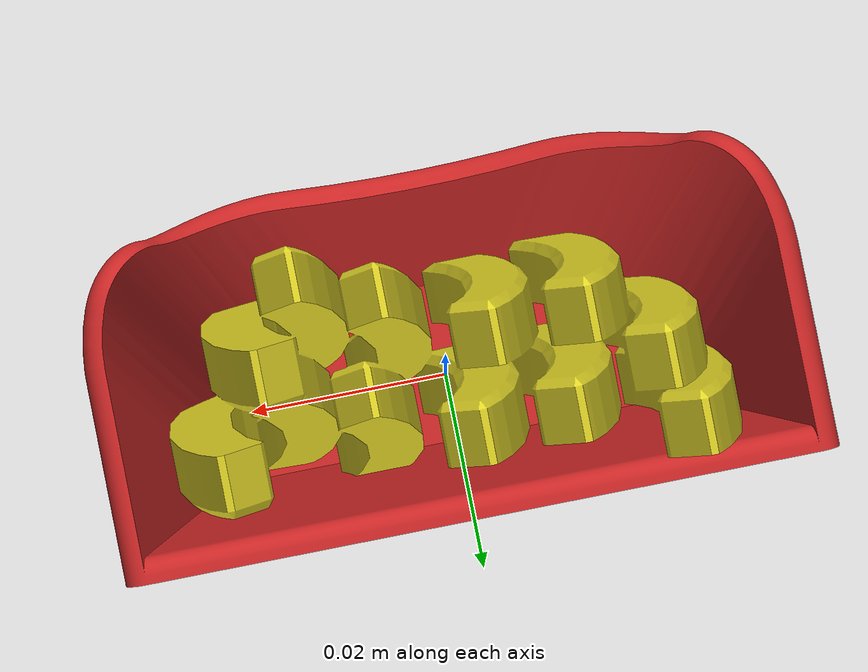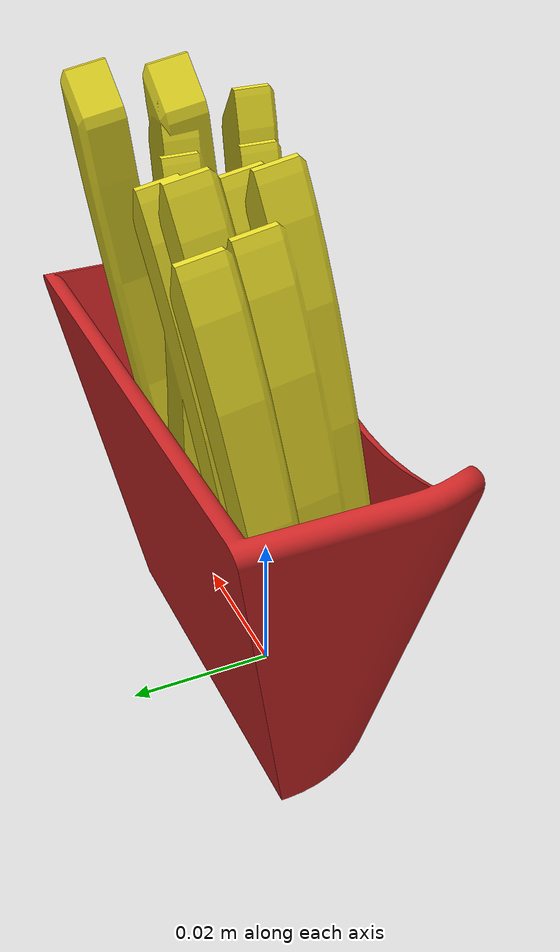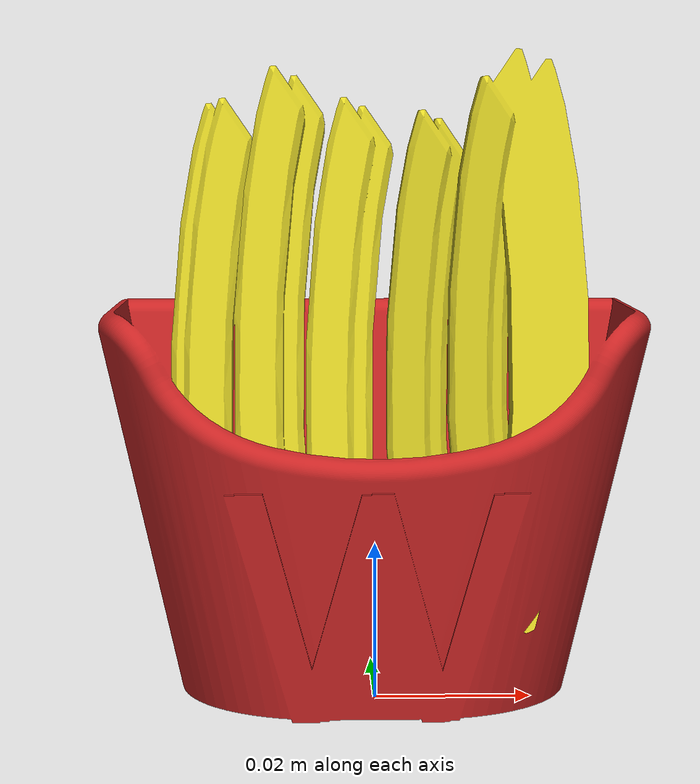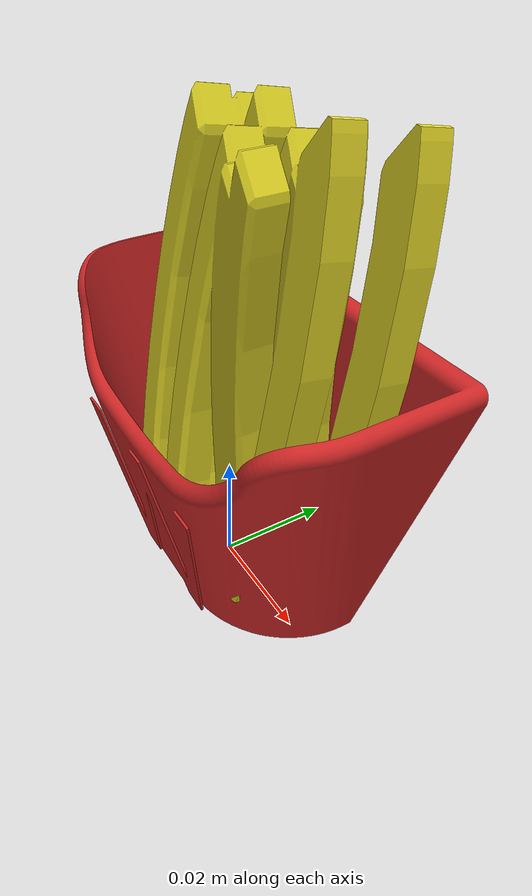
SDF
<?xml version="1.0" ?>
<sdf version="1.6">
  <model name="potatoes">
    <static>false</static>

    <link name="base_link">

      <gravity>true</gravity>
      <self_collide>false</self_collide>

      <inertial>
        <pose>0 0 0.025 0 0 0</pose>

        <!-- Antes 0.85 kg: demasiado pesado para esta simulación -->
        <mass>0.30</mass>

        <inertia>
          <ixx>0.00075</ixx>
          <ixy>0.0</ixy>
          <ixz>0.0</ixz>

          <iyy>0.00075</iyy>
          <iyz>0.0</iyz>

          <izz>0.00055</izz>
        </inertia>
      </inertial>

      <!-- Amortiguamiento moderado -->
      <velocity_decay>
        <linear>0.0</linear>
        <angular>0.0</angular>
      </velocity_decay>

      <!-- Base estable, pero no demasiado ancha -->
      <collision name="collision_stable_base">
        <pose>0 0 0.010 0 0 0</pose>

        <geometry>
          <box>
            <size>0.055 0.055 0.020</size>
          </box>
        </geometry>

        <surface>
          <friction>
            <ode>
              <mu>2.5</mu>
              <mu2>2.5</mu2>
              <slip1>0.0</slip1>
              <slip2>0.0</slip2>
            </ode>
          </friction>

          <bounce>
            <restitution_coefficient>0.0</restitution_coefficient>
            <threshold>100000.0</threshold>
          </bounce>

          <contact>
            <ode>
              <kp>80000.0</kp>
              <kd>25.0</kd>
              <max_vel>0.05</max_vel>
              <min_depth>0.001</min_depth>
            </ode>
          </contact>
        </surface>
      </collision>

      <!-- Parte que agarran los dedos -->
      <collision name="collision_grasp_core">
        <pose>0 0 0.045 0 0 0</pose>

        <geometry>
          <box>
            <size>0.042 0.042 0.070</size>
          </box>
        </geometry>

        <surface>
          <friction>
            <ode>
              <mu>3.0</mu>
              <mu2>3.0</mu2>
              <slip1>0.0</slip1>
              <slip2>0.0</slip2>
            </ode>
          </friction>

          <bounce>
            <restitution_coefficient>0.0</restitution_coefficient>
            <threshold>100000.0</threshold>
          </bounce>

          <contact>
            <ode>
              <kp>80000.0</kp>
              <kd>25.0</kd>
              <max_vel>0.05</max_vel>
              <min_depth>0.001</min_depth>
            </ode>
          </contact>
        </surface>
      </collision>

      <visual name="visual_basket">
        <pose>0 0 0 0 0 0</pose>

        <geometry>
          <mesh>
            <uri>model://potatoes/meshes/basket_v2.stl</uri>
            <scale>2 2 2</scale>
          </mesh>
        </geometry>

        <material>
          <script>
            <uri>file://media/materials/scripts/gazebo.material</uri>
            <name>Gazebo/Red</name>
          </script>
        </material>
      </visual>

      <visual name="visual_potatoes">
        <pose>0 0 0 0 0 0</pose>

        <geometry>
          <mesh>
            <uri>model://potatoes/meshes/potato_block_v2.stl</uri>
            <scale>2 2 2</scale>
          </mesh>
        </geometry>

        <material>
          <script>
            <uri>file://media/materials/scripts/gazebo.material</uri>
            <name>Gazebo/Yellow</name>
          </script>
        </material>
      </visual>

    </link>
  </model>
</sdf>
